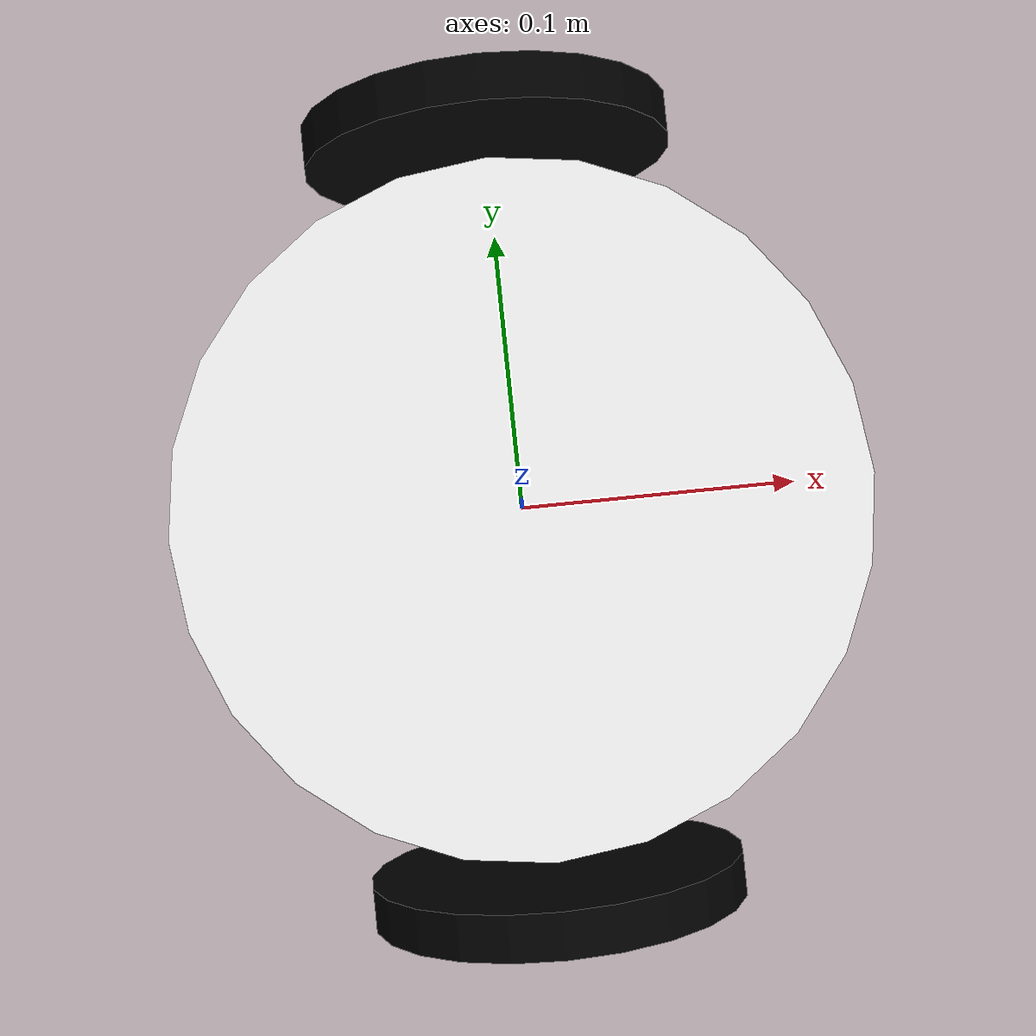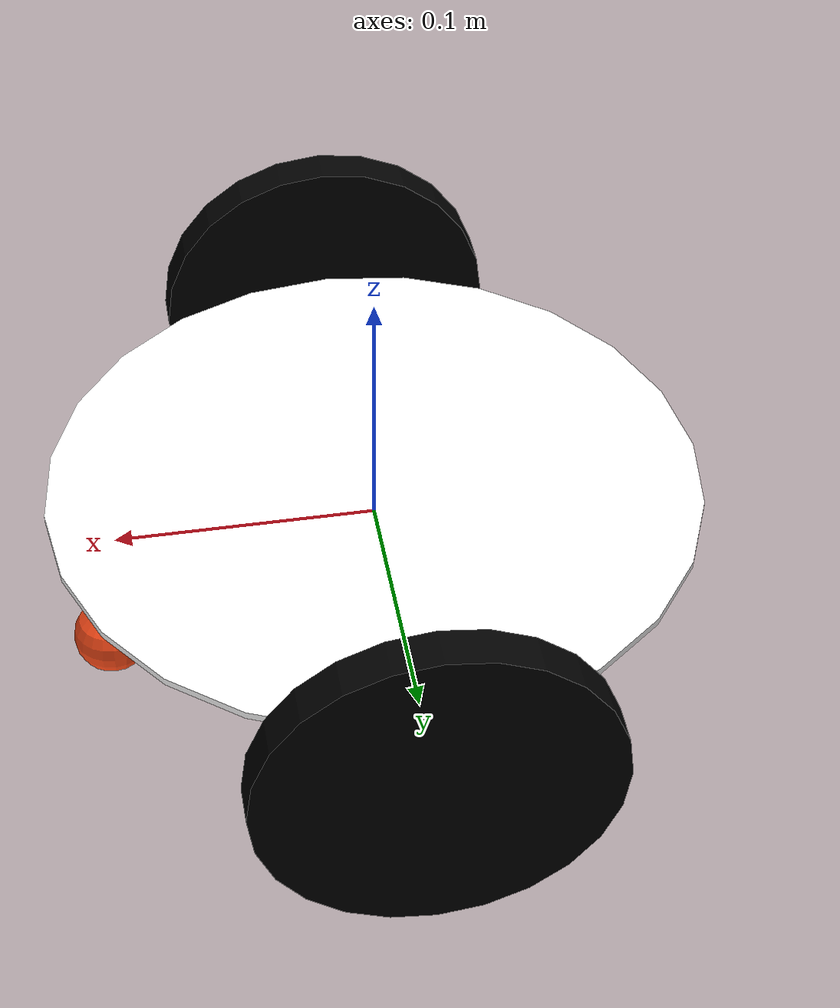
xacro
<?xml version="1.0"?>
<robot xmlns:xacro="http://www.ros.org/wiki/xacro">
<xacro:include filename="inertial_macros.xacro"/>

<material name="white">
    <color rgba="1 1 1 1"/>
</material>

<material name="black">
    <color rgba="0 0 0 1"/>
</material>

<material name ="orange">
    <color rgba="1 0.3 0.1 1"/>
</material>

<!--base link-->
    <link name="base_link"></link>

    <joint name ="base_footprint_joint" type="fixed">
        <parent link="base_link"/>
        <child link ="base_footprint"/>
        <origin xyz ="0 0 0"/>

    </joint>
    <link name="base_footprint"></link>
<!--chassis link-->

    <joint name ="chassis_joint" type="fixed">
        <parent link="base_link"/>
        <child link ="chassis"/>
        <origin xyz ="0 0 0"/>

    </joint>
    <link name ="chassis">
        <visual>
            <origin xyz ="0 0 0.015"/>
            <geometry>
                <cylinder radius="0.125" length="0.003"/>

            </geometry>
            <material name = "white"/>
        </visual>

        <collision>
            <origin xyz ="0 0 0.015"/>
            <geometry>
                <cylinder radius="0.125" length="0.003"/>

            </geometry>
        </collision>
        <xacro:inertial_cylinder mass="0.5" radius="0.125" length="0.003">
        <origin xyz="0 0 0.015" rpy="0 0 0"/>
        </xacro:inertial_cylinder>

    </link>
    <gazebo reference ="chassis">
        <material> Gazebo/White</material>
    </gazebo>
<!--left wheel link-->
    <joint name ="left_wheel_joint" type="continuous">
        <parent link="base_link"/>
        <child link ="left_wheel"/>
        <origin xyz ="0 0.135 0" rpy="-${pi/2} 0 0"/>
        <axis xyz = "0 0 1"/>
    </joint>

    <link name ="left_wheel">
        <visual>
            <geometry>
                <cylinder radius="0.067" length="0.015"/>

            </geometry>
            <material name = "black"/>
        </visual>

        <collision>
            <geometry>
                <cylinder radius="0.067" length="0.015"/>

            </geometry>
        </collision>
    <xacro:inertial_cylinder mass="0.3" radius="0.067" length="0.015">
        <origin xyz="0 0 0" rpy="0 0 0"/>
    </xacro:inertial_cylinder>
    </link>
    <gazebo reference ="left_wheel">
        <material> Gazebo/Black</material>
    </gazebo>

<!--right wheel link-->
    <joint name ="right_wheel_joint" type="continuous">
        <parent link="base_link"/>
        <child link ="right_wheel"/>
        <origin xyz ="0 -0.135 0" rpy="${pi/2} 0 0"/>
        <axis xyz = "0 0 -1"/>
    </joint>

    <link name ="right_wheel">
        <visual>
            <geometry>
                <cylinder radius="0.067" length="0.015"/>

            </geometry>
            <material name = "black"/>
        </visual>

        <collision>
            <geometry>
                <cylinder radius="0.067" length="0.015"/>

            </geometry>
        </collision>
    <xacro:inertial_cylinder mass="0.3" radius="0.067" length="0.015">
        <origin xyz="0 0 0" rpy="0 0 0"/>
    </xacro:inertial_cylinder>
    </link>
    <gazebo reference ="right_wheel">
        <material> Gazebo/Black</material>
    </gazebo>
<!--castor1 link-->

    <joint name ="castor1_joint" type="fixed">
        <parent link="chassis"/>
        <child link ="caster1"/>
        <origin xyz ="0.105 0 -0.051"/>
    </joint>
    <link name ="caster1">
        <visual>
            <geometry>
                <sphere radius="0.015" />

            </geometry>
            <material name = "orange"/>
        </visual>

        <collision>
            <geometry>
                <sphere radius="0.015" />

            </geometry>
        </collision>
    <xacro:inertial_sphere mass="0.1" radius="0.015" >
        <origin xyz="0 0 0" rpy="0 0 0"/>
    </xacro:inertial_sphere>
    </link>
    <gazebo reference ="caster1">
        <material> Gazebo/Orange</material>
        <mu1 value="0.001"/>
        <mu2 value="0.001"/>
    </gazebo>

<!--castor2 link-->

    <joint name ="castor2_joint" type="fixed">
        <parent link="chassis"/>
        <child link ="caster2"/>
        <origin xyz ="-0.105 0 -0.051"/>
    </joint>
    <link name ="caster2">
        <visual>
            <geometry>
                <sphere radius="0.015" />

            </geometry>
            <material name = "orange"/>
        </visual>

        <collision>
            <geometry>
                <sphere radius="0.015" />

            </geometry>
        </collision>
    <xacro:inertial_sphere mass="0.1" radius="0.015" >
        <origin xyz="0 0 0" rpy="0 0 0"/>
    </xacro:inertial_sphere>
    </link>
    <gazebo reference ="caster2">
        <material> Gazebo/Orange</material>
        <mu1 value="0.001"/>
        <mu2 value="0.001"/>
    </gazebo>

</robot>
